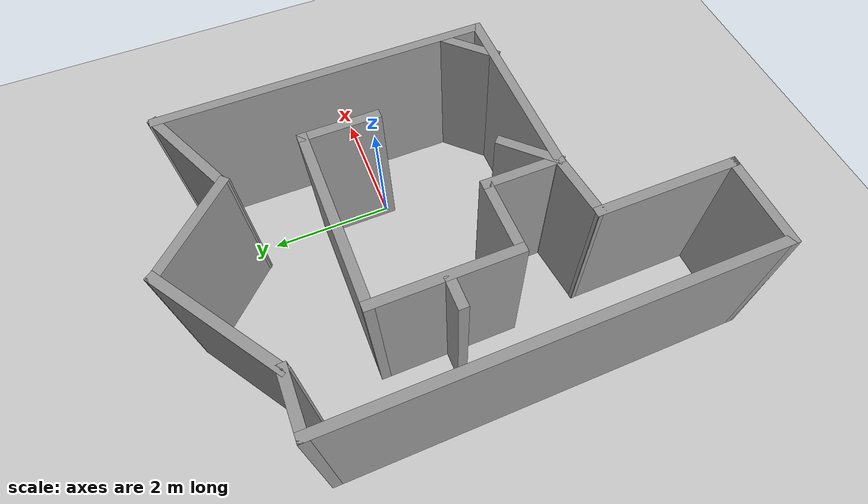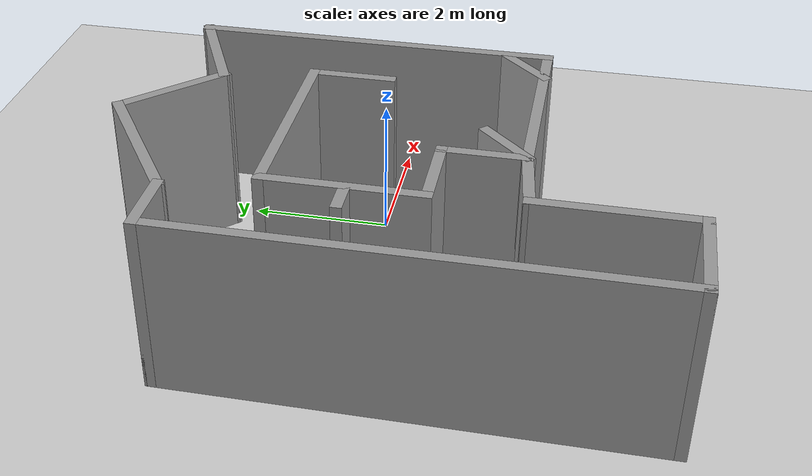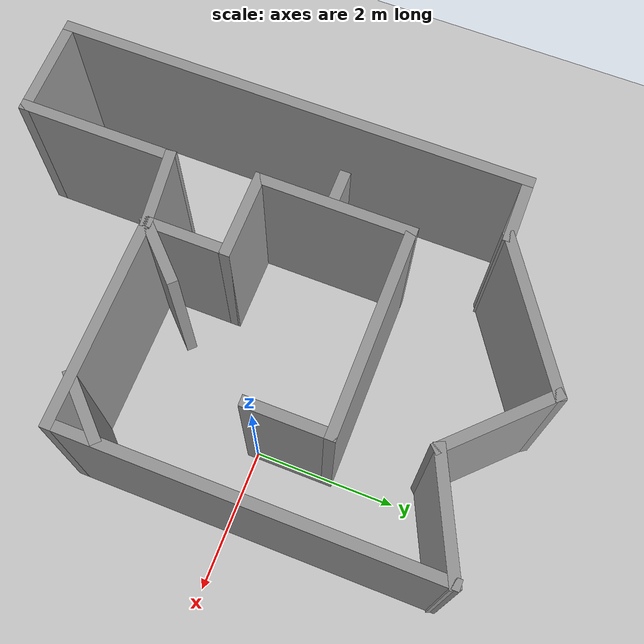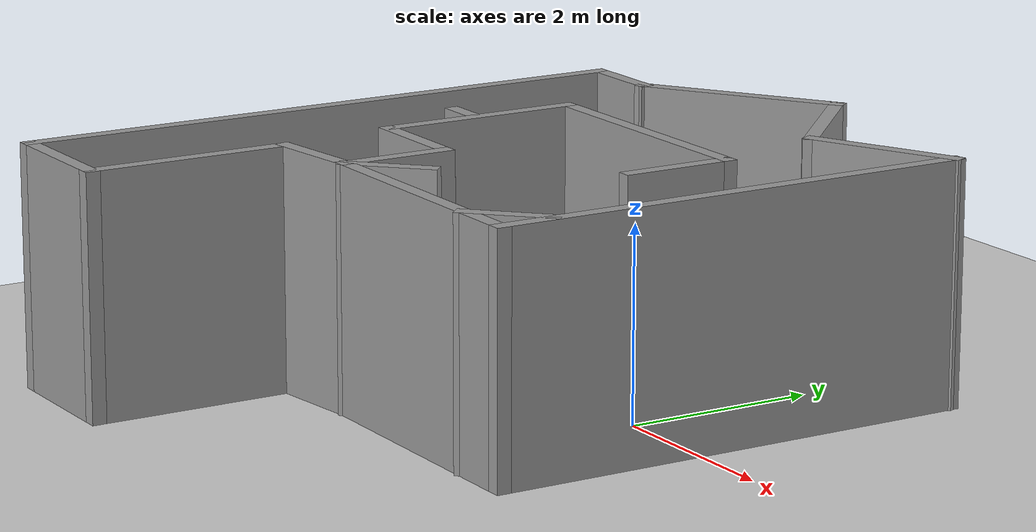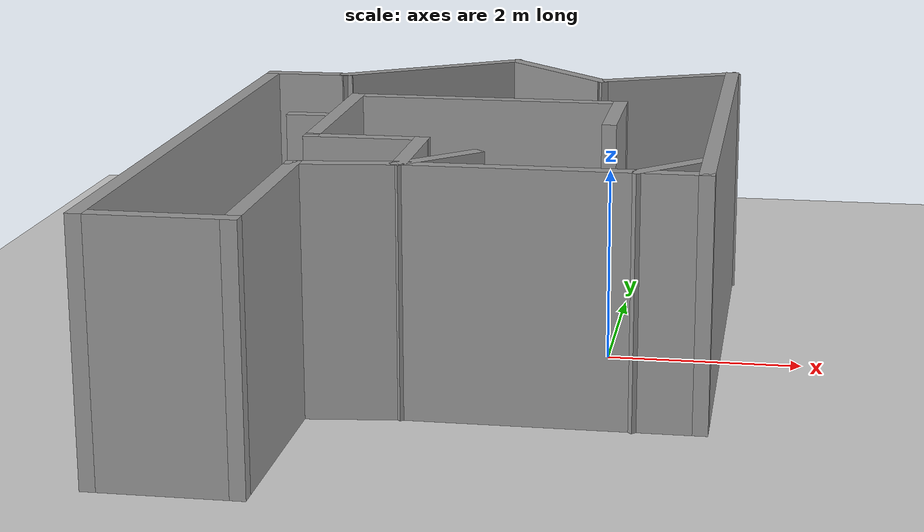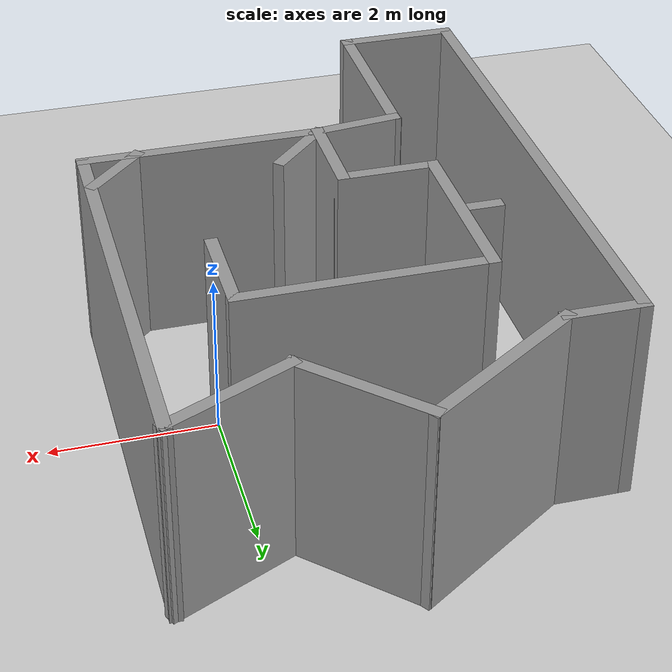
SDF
<sdf version="1.7">
 <world name="default">
  <light name="sun" type="directional">
   <pose>0 0 10 0 -0 0</pose>
   <diffuse>0.8 0.8 0.8 1</diffuse>
   <specular>0.2 0.2 0.2 1</specular>
   <attenuation>
    <range>1000</range>
    <constant>0.9</constant>
    <linear>0.01</linear>
    <quadratic>0.001</quadratic>
   </attenuation>
   <direction>-0.5 0.1 -0.9</direction>
   <spot><inner_angle>0</inner_angle><outer_angle>0</outer_angle><falloff>0</falloff></spot>
  </light>
  <model name="ground_plane">
   <static>1</static>
   <link name="link">
    <collision name="collision">
     <geometry><plane><normal>0 0 1</normal><size>100 100</size></plane></geometry>
     <surface><friction><ode><mu>100</mu><mu2>50</mu2></ode></friction></surface>
    </collision>
    <visual name="visual">
     <cast_shadows>0</cast_shadows>
     <geometry><plane><normal>0 0 1</normal><size>100 100</size></plane></geometry>
     <material>
      <script><uri>file://media/materials/scripts/gazebo.material</uri><name>Gazebo/Grey</name></script>
     </material>
    </visual>
   </link>
  </model>
  <gravity>0 0 -9.8</gravity>
  <magnetic_field>6e-06 2.3e-05 -4.2e-05</magnetic_field>
  <atmosphere type="adiabatic"/>
  <physics type="ode">
   <max_step_size>0.001</max_step_size>
   <real_time_factor>1</real_time_factor>
   <real_time_update_rate>1000</real_time_update_rate>
  </physics>
  <scene><ambient>0.4 0.4 0.4 1</ambient><background>0.7 0.7 0.7 1</background><shadows>1</shadows></scene>
  <audio><device>default</device></audio>
  <spherical_coordinates>
   <surface_model>EARTH_WGS84</surface_model>
   <latitude_deg>0</latitude_deg>
   <longitude_deg>0</longitude_deg>
   <elevation>0</elevation>
   <heading_deg>0</heading_deg>
  </spherical_coordinates>
  <model name="Untitled3">
   <pose>-1.49255 -0.464841 0 0 0 -1.5708</pose>
   <link name="Wall_0">
    <collision name="Wall_0_Collision">
     <geometry><box><size>2.25 0.15 2.5</size></box></geometry>
     <pose>0 0 1.25 0 -0 0</pose>
    </collision>
    <visual name="Wall_0_Visual">
     <pose>0 0 1.25 0 -0 0</pose>
     <geometry><box><size>2.25 0.15 2.5</size></box></geometry>
     <material>
      <script><uri>file://media/materials/scripts/gazebo.material</uri><name>Gazebo/Grey</name></script>
      <ambient>1 1 1 1</ambient>
     </material>
     <meta><layer>0</layer></meta>
    </visual>
    <pose>-0.459384 -1.36938 0 0 -0 3.14159</pose>
   </link>
   <link name="Wall_10">
    <collision name="Wall_10_Collision">
     <geometry><box><size>1.71284 0.15 2.5</size></box></geometry>
     <pose>0 0 1.25 0 -0 0</pose>
    </collision>
    <visual name="Wall_10_Visual">
     <pose>0 0 1.25 0 -0 0</pose>
     <geometry><box><size>1.71284 0.15 2.5</size></box></geometry>
     <material>
      <script><uri>file://media/materials/scripts/gazebo.material</uri><name>Gazebo/Grey</name></script>
      <ambient>1 1 1 1</ambient>
     </material>
     <meta><layer>0</layer></meta>
    </visual>
    <pose>-3.07913 1.87212 0 0 -0 -1.13461</pose>
   </link>
   <link name="Wall_11">
    <collision name="Wall_11_Collision">
     <geometry><box><size>1.75 0.15 2.5</size></box></geometry>
     <pose>0 0 1.25 0 -0 0</pose>
    </collision>
    <visual name="Wall_11_Visual">
     <pose>0 0 1.25 0 -0 0</pose>
     <geometry><box><size>1.75 0.15 2.5</size></box></geometry>
     <material>
      <script><uri>file://media/materials/scripts/gazebo.material</uri><name>Gazebo/Grey</name></script>
      <ambient>1 1 1 1</ambient>
     </material>
     <meta><layer>0</layer></meta>
    </visual>
    <pose>-3.30134 0.597939 0 0 -0 -2.35619</pose>
   </link>
   <link name="Wall_12">
    <collision name="Wall_12_Collision">
     <geometry><box><size>2.29694 0.15 2.5</size></box></geometry>
     <pose>0 0 1.25 0 -0 0</pose>
    </collision>
    <visual name="Wall_12_Visual">
     <pose>0 0 1.25 0 -0 0</pose>
     <geometry><box><size>2.29694 0.15 2.5</size></box></geometry>
     <material>
      <script><uri>file://media/materials/scripts/gazebo.material</uri><name>Gazebo/Grey</name></script>
      <ambient>1 1 1 1</ambient>
     </material>
     <meta><layer>0</layer></meta>
    </visual>
    <pose>-3.28551 -0.861395 0 0 -0 -0.983581</pose>
   </link>
   <link name="Wall_15">
    <collision name="Wall_15_Collision">
     <geometry><box><size>1 0.15 2.5</size></box></geometry>
     <pose>0 0 1.25 0 -0 0</pose>
    </collision>
    <visual name="Wall_15_Visual">
     <pose>0 0 1.25 0 -0 0</pose>
     <geometry><box><size>1 0.15 2.5</size></box></geometry>
     <material>
      <script><uri>file://media/materials/scripts/gazebo.material</uri><name>Gazebo/Grey</name></script>
      <ambient>1 1 1 1</ambient>
     </material>
     <meta><layer>0</layer></meta>
    </visual>
    <pose>-2.69075 -2.18004 0 0 -0 -1.5708</pose>
   </link>
   <link name="Wall_16">
    <collision name="Wall_16_Collision">
     <geometry><box><size>6.75 0.15 2.5</size></box></geometry>
     <pose>0 0 1.25 0 -0 0</pose>
    </collision>
    <visual name="Wall_16_Visual">
     <pose>0 0 1.25 0 -0 0</pose>
     <geometry><box><size>6.75 0.15 2.5</size></box></geometry>
     <material>
      <script><uri>file://media/materials/scripts/gazebo.material</uri><name>Gazebo/Grey</name></script>
      <ambient>1 1 1 1</ambient>
     </material>
     <meta><layer>0</layer></meta>
    </visual>
    <pose>0.609245 -2.60504 0 0 -0 0</pose>
   </link>
   <link name="Wall_17">
    <collision name="Wall_17_Collision">
     <geometry><box><size>1.5 0.15 2.5</size></box></geometry>
     <pose>0 0 1.25 0 -0 0</pose>
    </collision>
    <visual name="Wall_17_Visual">
     <pose>0 0 1.25 0 -0 0</pose>
     <geometry><box><size>1.5 0.15 2.5</size></box></geometry>
     <material>
      <script><uri>file://media/materials/scripts/gazebo.material</uri><name>Gazebo/Grey</name></script>
      <ambient>1 1 1 1</ambient>
     </material>
     <meta><layer>0</layer></meta>
    </visual>
    <pose>3.90924 -1.93004 0 0 -0 1.5708</pose>
   </link>
   <link name="Wall_18">
    <collision name="Wall_18_Collision">
     <geometry><box><size>2.25 0.15 2.5</size></box></geometry>
     <pose>0 0 1.25 0 -0 0</pose>
    </collision>
    <visual name="Wall_18_Visual">
     <pose>0 0 1.25 0 -0 0</pose>
     <geometry><box><size>2.25 0.15 2.5</size></box></geometry>
     <material>
      <script><uri>file://media/materials/scripts/gazebo.material</uri><name>Gazebo/Grey</name></script>
      <ambient>1 1 1 1</ambient>
     </material>
     <meta><layer>0</layer></meta>
    </visual>
    <pose>2.85925 -1.25504 0 0 -0 3.14159</pose>
   </link>
   <link name="Wall_19">
    <collision name="Wall_19_Collision">
     <geometry><box><size>1.14278 0.15 2.5</size></box></geometry>
     <pose>0 0 1.25 0 -0 0</pose>
    </collision>
    <visual name="Wall_19_Visual">
     <pose>0 0 1.25 0 -0 0</pose>
     <geometry><box><size>1.14278 0.15 2.5</size></box></geometry>
     <material>
      <script><uri>file://media/materials/scripts/gazebo.material</uri><name>Gazebo/Grey</name></script>
      <ambient>1 1 1 1</ambient>
     </material>
     <meta><layer>0</layer></meta>
    </visual>
    <pose>1.74993 -0.762211 0 0 -0 1.69057</pose>
   </link>
   <link name="Wall_2">
    <collision name="Wall_2_Collision">
     <geometry><box><size>3 0.15 2.5</size></box></geometry>
     <pose>0 0 1.25 0 -0 0</pose>
    </collision>
    <visual name="Wall_2_Visual">
     <pose>0 0 1.25 0 -0 0</pose>
     <geometry><box><size>3 0.15 2.5</size></box></geometry>
     <material>
      <script><uri>file://media/materials/scripts/gazebo.material</uri><name>Gazebo/Grey</name></script>
      <ambient>1 1 1 1</ambient>
     </material>
     <meta><layer>0</layer></meta>
    </visual>
    <pose>-1.50938 0.055621 0 0 -0 1.5708</pose>
   </link>
   <link name="Wall_21">
    <collision name="Wall_21_Collision">
     <geometry><box><size>1 0.15 2.5</size></box></geometry>
     <pose>0 0 1.25 0 -0 0</pose>
    </collision>
    <visual name="Wall_21_Visual">
     <pose>0 0 1.25 0 -0 0</pose>
     <geometry><box><size>1 0.15 2.5</size></box></geometry>
     <material>
      <script><uri>file://media/materials/scripts/gazebo.material</uri><name>Gazebo/Grey</name></script>
      <ambient>1 1 1 1</ambient>
     </material>
     <meta><layer>0</layer></meta>
    </visual>
    <pose>1.39835 2.24274 0 0 -0 -0.785398</pose>
   </link>
   <link name="Wall_23">
    <collision name="Wall_23_Collision">
     <geometry><box><size>1 0.15 2.5</size></box></geometry>
     <pose>0 0 1.25 0 -0 0</pose>
    </collision>
    <visual name="Wall_23_Visual">
     <pose>0 0 1.25 0 -0 0</pose>
     <geometry><box><size>1 0.15 2.5</size></box></geometry>
     <material>
      <script><uri>file://media/materials/scripts/gazebo.material</uri><name>Gazebo/Grey</name></script>
      <ambient>1 1 1 1</ambient>
     </material>
     <meta><layer>0</layer></meta>
    </visual>
    <pose>1.3901 0.031142 0 0 -0 2.35619</pose>
   </link>
   <link name="Wall_25">
    <collision name="Wall_25_Collision">
     <geometry><box><size>0.5 0.15 2.5</size></box></geometry>
     <pose>0 0 1.25 0 -0 0</pose>
    </collision>
    <visual name="Wall_25_Visual">
     <pose>0 0 1.25 0 -0 0</pose>
     <geometry><box><size>0.5 0.15 2.5</size></box></geometry>
     <material>
      <script><uri>file://media/materials/scripts/gazebo.material</uri><name>Gazebo/Grey</name></script>
      <ambient>1 1 1 1</ambient>
     </material>
     <meta><layer>0</layer></meta>
    </visual>
    <pose>-0.423803 -1.61947 0 0 -0 -1.5708</pose>
   </link>
   <link name="Wall_3">
    <collision name="Wall_3_Collision">
     <geometry><box><size>1.25 0.15 2.5</size></box></geometry>
     <pose>0 0 1.25 0 -0 0</pose>
    </collision>
    <visual name="Wall_3_Visual">
     <pose>0 0 1.25 0 -0 0</pose>
     <geometry><box><size>1.25 0.15 2.5</size></box></geometry>
     <material>
      <script><uri>file://media/materials/scripts/gazebo.material</uri><name>Gazebo/Grey</name></script>
      <ambient>1 1 1 1</ambient>
     </material>
     <meta><layer>0</layer></meta>
    </visual>
    <pose>-0.959384 1.48062 0 0 -0 0</pose>
   </link>
   <link name="Wall_5">
    <collision name="Wall_5_Collision">
     <geometry><box><size>1.25 0.15 2.5</size></box></geometry>
     <pose>0 0 1.25 0 -0 0</pose>
    </collision>
    <visual name="Wall_5_Visual">
     <pose>0 0 1.25 0 -0 0</pose>
     <geometry><box><size>1.25 0.15 2.5</size></box></geometry>
     <material>
      <script><uri>file://media/materials/scripts/gazebo.material</uri><name>Gazebo/Grey</name></script>
      <ambient>1 1 1 1</ambient>
     </material>
     <meta><layer>0</layer></meta>
    </visual>
    <pose>0.590616 -0.819379 0 0 -0 1.5708</pose>
   </link>
   <link name="Wall_7">
    <collision name="Wall_7_Collision">
     <geometry><box><size>1.25 0.15 2.5</size></box></geometry>
     <pose>0 0 1.25 0 -0 0</pose>
    </collision>
    <visual name="Wall_7_Visual">
     <pose>0 0 1.25 0 -0 0</pose>
     <geometry><box><size>1.25 0.15 2.5</size></box></geometry>
     <material>
      <script><uri>file://media/materials/scripts/gazebo.material</uri><name>Gazebo/Grey</name></script>
      <ambient>1 1 1 1</ambient>
     </material>
     <meta><layer>0</layer></meta>
    </visual>
    <pose>1.14062 -0.269379 0 0 -0 0</pose>
   </link>
   <link name="Wall_8">
    <collision name="Wall_8_Collision">
     <geometry><box><size>3 0.15 2.5</size></box></geometry>
     <pose>0 0 1.25 0 -0 0</pose>
    </collision>
    <visual name="Wall_8_Visual">
     <pose>0 0 1.25 0 -0 0</pose>
     <geometry><box><size>3 0.15 2.5</size></box></geometry>
     <material>
      <script><uri>file://media/materials/scripts/gazebo.material</uri><name>Gazebo/Grey</name></script>
      <ambient>1 1 1 1</ambient>
     </material>
     <meta><layer>0</layer></meta>
    </visual>
    <pose>1.69062 1.15562 0 0 -0 1.5708</pose>
   </link>
   <link name="Wall_9">
    <collision name="Wall_9_Collision">
     <geometry><box><size>5.25 0.15 2.5</size></box></geometry>
     <pose>0 0 1.25 0 -0 0</pose>
    </collision>
    <visual name="Wall_9_Visual">
     <pose>0 0 1.25 0 -0 0</pose>
     <geometry><box><size>5.25 0.15 2.5</size></box></geometry>
     <material>
      <script><uri>file://media/materials/scripts/gazebo.material</uri><name>Gazebo/Grey</name></script>
      <ambient>1 1 1 1</ambient>
     </material>
     <meta><layer>0</layer></meta>
    </visual>
    <pose>-0.859384 2.58062 0 0 -0 3.14159</pose>
   </link>
   <static>1</static>
  </model>
 </world>
</sdf>
